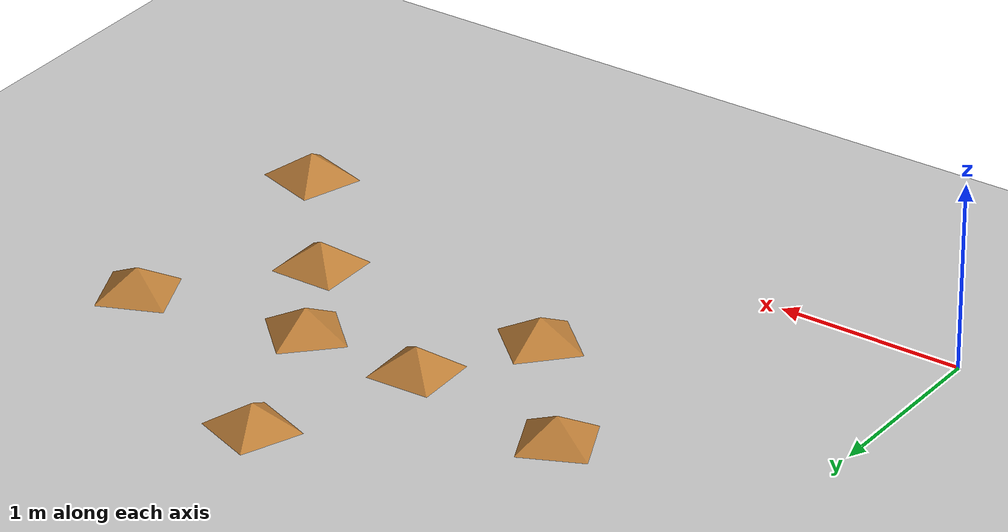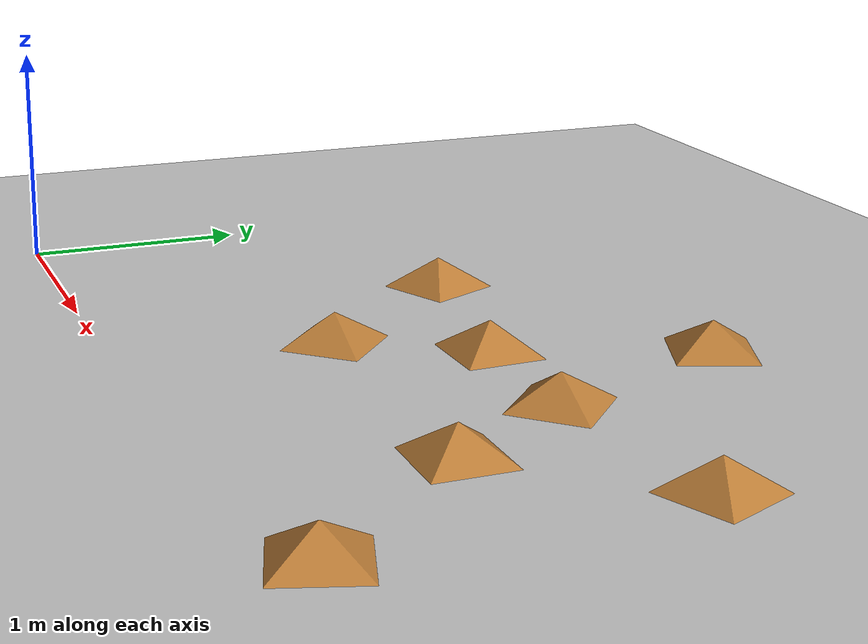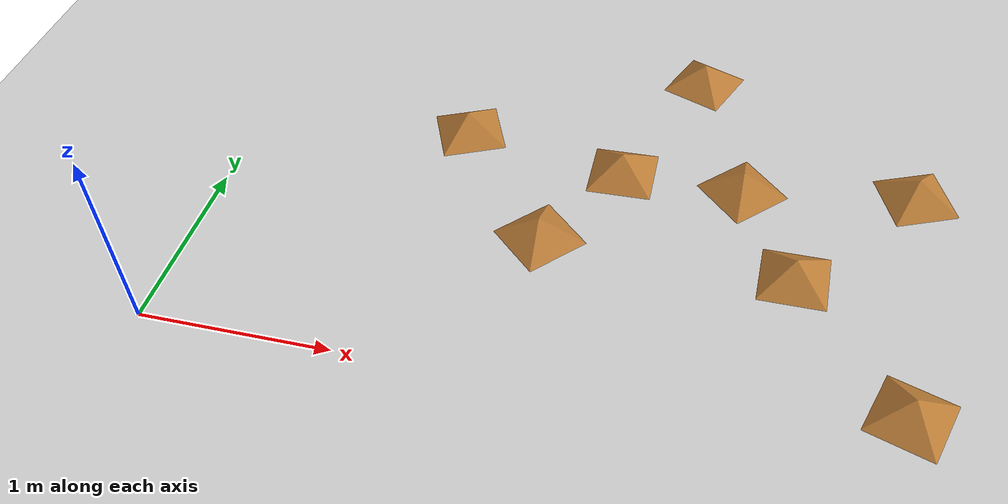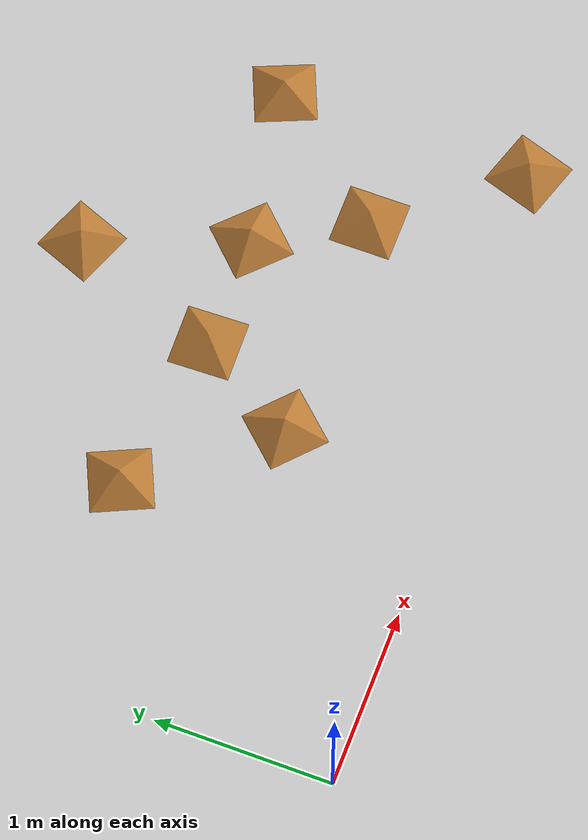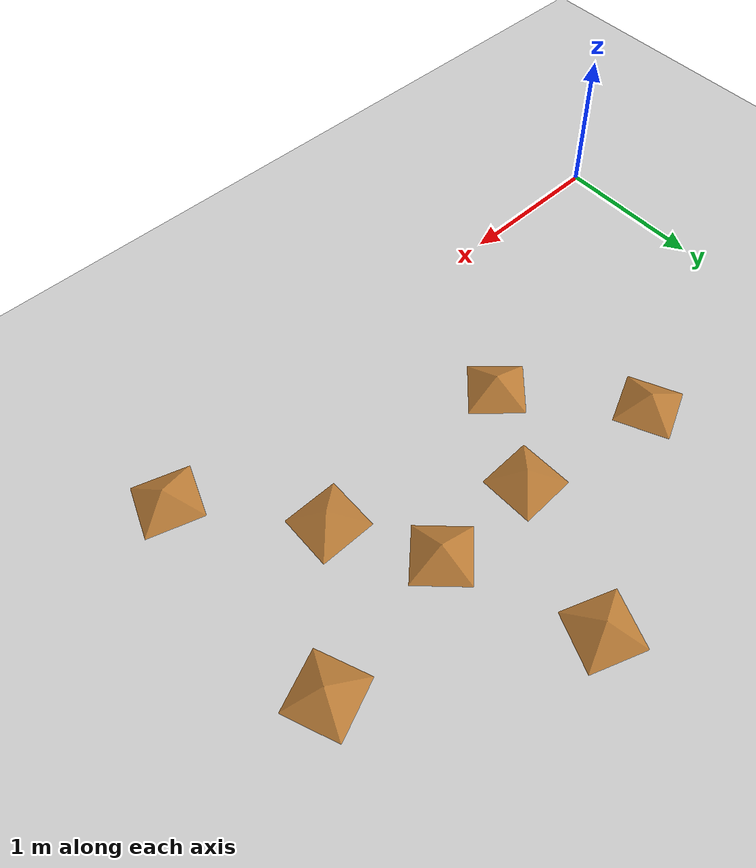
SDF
<?xml version="1.0" ?>
<sdf version="1.5">
  <world name="default">
    <include>
      <uri>model://sun</uri>
    </include>
    <include>
      <uri>model://ground_plane</uri>
    </include>

    <model name="piramide_00">
      <static>true</static>
      <pose>3.1100 0.9419 0 0 0 0.0000</pose>
      <link name="link">
        <collision name="collision">
          <geometry>
            <mesh>
              <uri>file:///home/alessandro/journal_comparison/src/rocker_bogie/world/banco/piramide.stl</uri>
              <scale>0.3500 0.3500 0.1400</scale>
            </mesh>
          </geometry>
          <surface>
            <friction>
              <ode><mu>100</mu><mu2>50</mu2></ode>
            </friction>
          </surface>
        </collision>
        <visual name="visual">
          <geometry>
            <mesh>
              <uri>file:///home/alessandro/journal_comparison/src/rocker_bogie/world/banco/piramide.stl</uri>
              <scale>0.3500 0.3500 0.1400</scale>
            </mesh>
          </geometry>
          <material>
            <ambient>0.55 0.35 0.15 1</ambient>
            <diffuse>0.75 0.50 0.22 1</diffuse>
          </material>
        </visual>
      </link>
    </model>

    <model name="piramide_01">
      <static>true</static>
      <pose>3.6988 1.6631 0 0 0 0.4000</pose>
      <link name="link">
        <collision name="collision">
          <geometry>
            <mesh>
              <uri>file:///home/alessandro/journal_comparison/src/rocker_bogie/world/banco/piramide.stl</uri>
              <scale>0.3500 0.3500 0.1400</scale>
            </mesh>
          </geometry>
          <surface>
            <friction>
              <ode><mu>100</mu><mu2>50</mu2></ode>
            </friction>
          </surface>
        </collision>
        <visual name="visual">
          <geometry>
            <mesh>
              <uri>file:///home/alessandro/journal_comparison/src/rocker_bogie/world/banco/piramide.stl</uri>
              <scale>0.3500 0.3500 0.1400</scale>
            </mesh>
          </geometry>
          <material>
            <ambient>0.55 0.35 0.15 1</ambient>
            <diffuse>0.75 0.50 0.22 1</diffuse>
          </material>
        </visual>
      </link>
    </model>

    <model name="piramide_02">
      <static>true</static>
      <pose>2.7798 1.5138 0 0 0 0.8000</pose>
      <link name="link">
        <collision name="collision">
          <geometry>
            <mesh>
              <uri>file:///home/alessandro/journal_comparison/src/rocker_bogie/world/banco/piramide.stl</uri>
              <scale>0.3500 0.3500 0.1400</scale>
            </mesh>
          </geometry>
          <surface>
            <friction>
              <ode><mu>100</mu><mu2>50</mu2></ode>
            </friction>
          </surface>
        </collision>
        <visual name="visual">
          <geometry>
            <mesh>
              <uri>file:///home/alessandro/journal_comparison/src/rocker_bogie/world/banco/piramide.stl</uri>
              <scale>0.3500 0.3500 0.1400</scale>
            </mesh>
          </geometry>
          <material>
            <ambient>0.55 0.35 0.15 1</ambient>
            <diffuse>0.75 0.50 0.22 1</diffuse>
          </material>
        </visual>
      </link>
    </model>

    <model name="piramide_03">
      <static>true</static>
      <pose>2.4496 2.3843 0 0 0 1.2000</pose>
      <link name="link">
        <collision name="collision">
          <geometry>
            <mesh>
              <uri>file:///home/alessandro/journal_comparison/src/rocker_bogie/world/banco/piramide.stl</uri>
              <scale>0.3500 0.3500 0.1400</scale>
            </mesh>
          </geometry>
          <surface>
            <friction>
              <ode><mu>100</mu><mu2>50</mu2></ode>
            </friction>
          </surface>
        </collision>
        <visual name="visual">
          <geometry>
            <mesh>
              <uri>file:///home/alessandro/journal_comparison/src/rocker_bogie/world/banco/piramide.stl</uri>
              <scale>0.3500 0.3500 0.1400</scale>
            </mesh>
          </geometry>
          <material>
            <ambient>0.55 0.35 0.15 1</ambient>
            <diffuse>0.75 0.50 0.22 1</diffuse>
          </material>
        </visual>
      </link>
    </model>

    <model name="piramide_04">
      <static>true</static>
      <pose>2.1194 1.5138 0 0 0 0.0292</pose>
      <link name="link">
        <collision name="collision">
          <geometry>
            <mesh>
              <uri>file:///home/alessandro/journal_comparison/src/rocker_bogie/world/banco/piramide.stl</uri>
              <scale>0.3500 0.3500 0.1400</scale>
            </mesh>
          </geometry>
          <surface>
            <friction>
              <ode><mu>100</mu><mu2>50</mu2></ode>
            </friction>
          </surface>
        </collision>
        <visual name="visual">
          <geometry>
            <mesh>
              <uri>file:///home/alessandro/journal_comparison/src/rocker_bogie/world/banco/piramide.stl</uri>
              <scale>0.3500 0.3500 0.1400</scale>
            </mesh>
          </geometry>
          <material>
            <ambient>0.55 0.35 0.15 1</ambient>
            <diffuse>0.75 0.50 0.22 1</diffuse>
          </material>
        </visual>
      </link>
    </model>

    <model name="piramide_05">
      <static>true</static>
      <pose>1.2004 1.6631 0 0 0 0.4292</pose>
      <link name="link">
        <collision name="collision">
          <geometry>
            <mesh>
              <uri>file:///home/alessandro/journal_comparison/src/rocker_bogie/world/banco/piramide.stl</uri>
              <scale>0.3500 0.3500 0.1400</scale>
            </mesh>
          </geometry>
          <surface>
            <friction>
              <ode><mu>100</mu><mu2>50</mu2></ode>
            </friction>
          </surface>
        </collision>
        <visual name="visual">
          <geometry>
            <mesh>
              <uri>file:///home/alessandro/journal_comparison/src/rocker_bogie/world/banco/piramide.stl</uri>
              <scale>0.3500 0.3500 0.1400</scale>
            </mesh>
          </geometry>
          <material>
            <ambient>0.55 0.35 0.15 1</ambient>
            <diffuse>0.75 0.50 0.22 1</diffuse>
          </material>
        </visual>
      </link>
    </model>

    <model name="piramide_06">
      <static>true</static>
      <pose>1.7892 0.9419 0 0 0 0.8292</pose>
      <link name="link">
        <collision name="collision">
          <geometry>
            <mesh>
              <uri>file:///home/alessandro/journal_comparison/src/rocker_bogie/world/banco/piramide.stl</uri>
              <scale>0.3500 0.3500 0.1400</scale>
            </mesh>
          </geometry>
          <surface>
            <friction>
              <ode><mu>100</mu><mu2>50</mu2></ode>
            </friction>
          </surface>
        </collision>
        <visual name="visual">
          <geometry>
            <mesh>
              <uri>file:///home/alessandro/journal_comparison/src/rocker_bogie/world/banco/piramide.stl</uri>
              <scale>0.3500 0.3500 0.1400</scale>
            </mesh>
          </geometry>
          <material>
            <ambient>0.55 0.35 0.15 1</ambient>
            <diffuse>0.75 0.50 0.22 1</diffuse>
          </material>
        </visual>
      </link>
    </model>

    <model name="piramide_11">
      <static>true</static>
      <pose>3.6988 0.2207 0 0 0 1.2584</pose>
      <link name="link">
        <collision name="collision">
          <geometry>
            <mesh>
              <uri>file:///home/alessandro/journal_comparison/src/rocker_bogie/world/banco/piramide.stl</uri>
              <scale>0.3500 0.3500 0.1400</scale>
            </mesh>
          </geometry>
          <surface>
            <friction>
              <ode><mu>100</mu><mu2>50</mu2></ode>
            </friction>
          </surface>
        </collision>
        <visual name="visual">
          <geometry>
            <mesh>
              <uri>file:///home/alessandro/journal_comparison/src/rocker_bogie/world/banco/piramide.stl</uri>
              <scale>0.3500 0.3500 0.1400</scale>
            </mesh>
          </geometry>
          <material>
            <ambient>0.55 0.35 0.15 1</ambient>
            <diffuse>0.75 0.50 0.22 1</diffuse>
          </material>
        </visual>
      </link>
    </model>
  </world>
</sdf>
